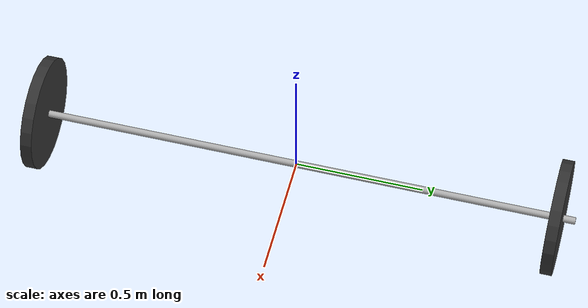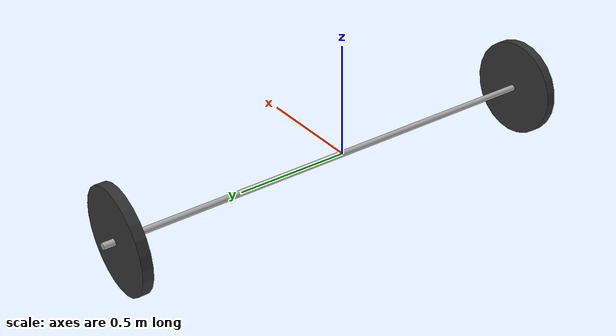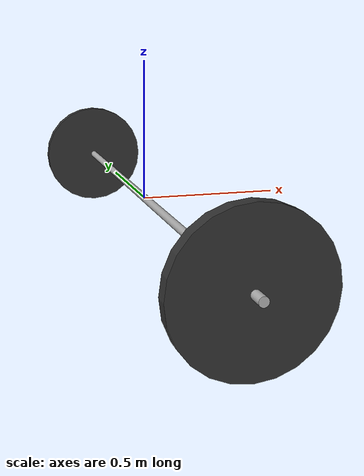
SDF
<?xml version="1.0" ?>
<sdf version="1.7">
  <model name="barbell">
    <static>false</static>

    <link name="bar">
      <!-- Lightweight inertial properties for simulation -->
      <inertial>
        <mass>3.0</mass>
        <pose>0 0 0 0 0 0</pose>
        <inertia>
          <ixx>0.05</ixx><ixy>0</ixy><ixz>0</ixz>
          <iyy>0.05</iyy><iyz>0</iyz>
          <izz>0.005</izz>
        </inertia>
      </inertial>

      <!-- Bar shaft (2.2 m long, 28 mm diameter) -->
      <visual name="bar_vis">
        <pose>0 0 0 1.57079632679 0 0</pose> <!-- roll 90° to align along Y -->
        <geometry>
          <cylinder>
            <radius>0.014</radius>
            <length>2.20</length>
          </cylinder>
        </geometry>
        <material><diffuse>0.7 0.7 0.7 1</diffuse></material>
      </visual>

      <collision name="bar_col">
        <pose>0 0 0 1.57079632679 0 0</pose>
        <geometry>
          <cylinder>
            <radius>0.014</radius>
            <length>2.20</length>
          </cylinder>
        </geometry>
      </collision>

      <!-- Left 45 lb plate -->
      <visual name="plate_L_vis">
        <pose>0 1.03 0 1.57079632679 0 0</pose>
        <geometry>
          <cylinder>
            <radius>0.225</radius>
            <length>0.045</length>
          </cylinder>
        </geometry>
        <material><diffuse>0.2 0.2 0.2 1</diffuse></material>
      </visual>

      <collision name="plate_L_col">
        <pose>0 1.03 0 1.57079632679 0 0</pose>
        <geometry>
          <cylinder>
            <radius>0.225</radius>
            <length>0.045</length>
          </cylinder>
        </geometry>
      </collision>

      <!-- Right 45 lb plate -->
      <visual name="plate_R_vis">
        <pose>0 -1.03 0 1.57079632679 0 0</pose>
        <geometry>
          <cylinder>
            <radius>0.225</radius>
            <length>0.045</length>
          </cylinder>
        </geometry>
        <material><diffuse>0.2 0.2 0.2 1</diffuse></material>
      </visual>

      <collision name="plate_R_col">
        <pose>0 -1.03 0 1.57079632679 0 0</pose>
        <geometry>
          <cylinder>
            <radius>0.225</radius>
            <length>0.045</length>
          </cylinder>
        </geometry>
      </collision>
    </link>
  </model>
</sdf>
